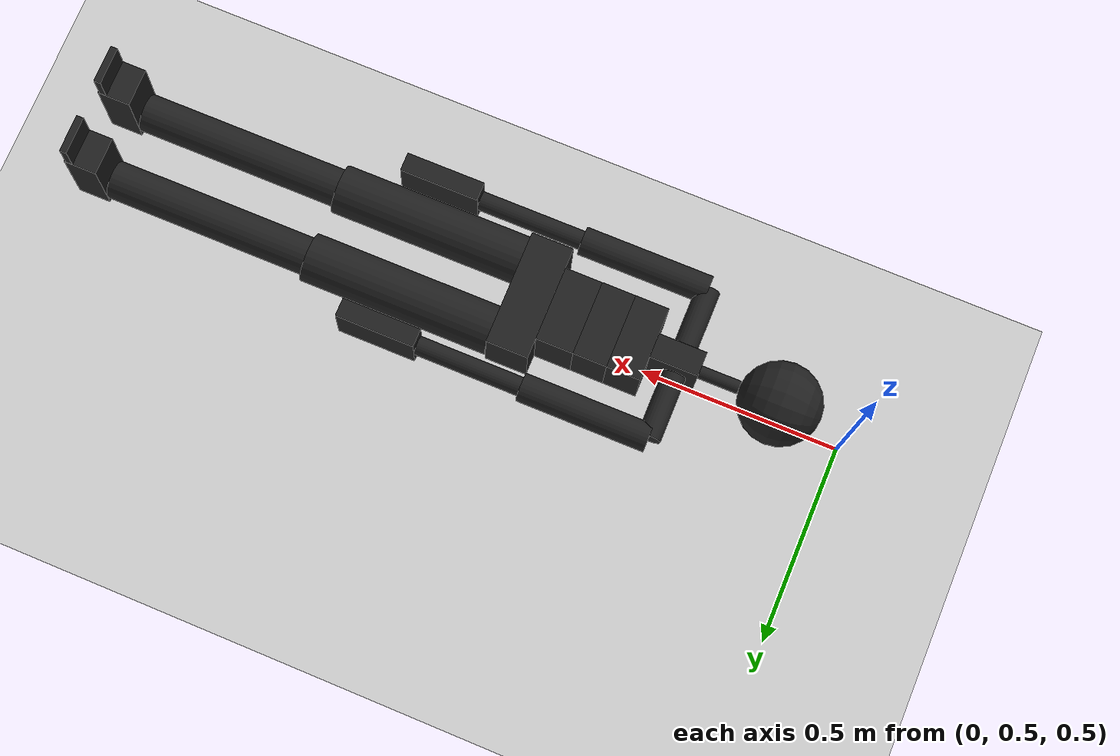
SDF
<sdf version="1.9">
 <world name="empty_world">
  <gravity>0 0 -9.8</gravity>
  <magnetic_field>6e-06 2.3e-05 -4.2e-05</magnetic_field>
  <atmosphere type="adiabatic"/>
  <physics type="ode">
   <max_step_size>0.001</max_step_size>
   <real_time_factor>1</real_time_factor>
   <real_time_update_rate>1000</real_time_update_rate>
  </physics>
  <scene><ambient>0.4 0.4 0.4 1</ambient><background>0.7 0.7 0.7 1</background><shadows>true</shadows></scene>
  <model name="ground_plane">
   <static>true</static>
   <link name="link">
    <collision name="collision">
     <geometry><plane><normal>0 0 1</normal><size>1 1</size></plane></geometry>
    </collision>
    <visual name="visual">
     <geometry><plane><normal>0 0 1</normal><size>100 100</size></plane></geometry>
     <material>
      <ambient>0.8 0.8 0.8 1</ambient>
      <diffuse>0.8 0.8 0.8 1</diffuse>
      <specular>0.8 0.8 0.8 1</specular>
     </material>
    </visual>
    <inertial>
     <mass>1</mass>
     <inertia><ixx>1</ixx><ixy>0</ixy><ixz>0</ixz><iyy>1</iyy><iyz>0</iyz><izz>1</izz></inertia>
    </inertial>
   </link>
   <pose>0.5 0 0 0 -0 0</pose>
  </model>
  <model name="simple_human_model">
   <static>false</static>
   <model name="XSensStyleModel_template">
    <link name="Pelvis">
     <inertial>
      <pose>0 0 0.05412 0 0 0</pose>
      <mass>5.6059799999999997</mass>
      <inertia>
       <ixx>0.044245</ixx>
       <ixy>0</ixy>
       <ixz>0</ixz>
       <iyy>0.017009</iyy>
       <iyz>0</iyz>
       <izz>0.050737999999999998</izz>
      </inertia>
     </inertial>
     <collision name="Pelvis_collision">
      <pose>0 0 0.05412 0 0 0</pose>
      <geometry><box><size>0.1529 0.2785 0.10227</size></box></geometry>
     </collision>
     <visual name="Pelvis_visual">
      <pose>0 0 0.05412 0 0 0</pose>
      <geometry><box><size>0.1529 0.2785 0.10227</size></box></geometry>
      <material><diffuse>0.125 0.125 0.125 1</diffuse><ambient>0.125 0.125 0.125 1</ambient></material>
     </visual>
    </link>
    <joint name="jL5S1_rotx" type="revolute">
     <pose relative_to="Pelvis">-0.0006089999999999999 0 0.10526 0 0 0</pose>
     <parent>Pelvis</parent>
     <child>L5_f1</child>
     <axis>
      <xyz>1 0 0</xyz>
      <limit>
       <lower>-0.61086499999999999</lower>
       <upper>0.61086499999999999</upper>
       <effort>30</effort>
       <velocity>1</velocity>
      </limit>
      <dynamics>
       <damping>0.10000000000000001</damping>
       <friction>0</friction>
       <spring_reference>0</spring_reference>
       <spring_stiffness>0</spring_stiffness>
      </dynamics>
     </axis>
    </joint>
    <link name="L5_f1">
     <pose relative_to="jL5S1_rotx">0 0 0 0 0 0</pose>
     <inertial>
      <mass>0.001</mass>
      <inertia>
       <ixx>9.9999999999999995e-07</ixx>
       <ixy>0</ixy>
       <ixz>0</ixz>
       <iyy>9.9999999999999995e-07</iyy>
       <iyz>0</iyz>
       <izz>9.9999999999999995e-07</izz>
      </inertia>
     </inertial>
    </link>
    <joint name="jL5S1_roty" type="revolute">
     <pose relative_to="L5_f1">0 0 0 0 0 0</pose>
     <parent>L5_f1</parent>
     <child>L5</child>
     <axis>
      <xyz>0 1 0</xyz>
      <limit>
       <lower>-0.52359900000000004</lower>
       <upper>1.3089999999999999</upper>
       <effort>30</effort>
       <velocity>1</velocity>
      </limit>
      <dynamics>
       <damping>0.10000000000000001</damping>
       <friction>0</friction>
       <spring_reference>0</spring_reference>
       <spring_stiffness>0</spring_stiffness>
      </dynamics>
     </axis>
    </joint>
    <link name="L5">
     <pose relative_to="jL5S1_roty">0 0 0 0 0 0</pose>
     <inertial>
      <pose>0 0 0.045123 0 0 0</pose>
      <mass>7.6908000000000003</mass>
      <inertia>
       <ixx>0.026136</ixx>
       <ixy>0</ixy>
       <ixz>0</ixz>
       <iyy>0.020202999999999999</iyy>
       <iyz>0</iyz>
       <izz>0.035900000000000001</izz>
      </inertia>
     </inertial>
     <collision name="L5_collision">
      <pose>0 0 0.045123 0 0 0</pose>
      <geometry><box><size>0.1529 0.18065 0.090247</size></box></geometry>
     </collision>
     <visual name="L5_visual">
      <pose>0 0 0.045123 0 0 0</pose>
      <geometry><box><size>0.1529 0.18065 0.090247</size></box></geometry>
      <material><diffuse>0.125 0.125 0.125 1</diffuse><ambient>0.125 0.125 0.125 1</ambient></material>
     </visual>
    </link>
    <joint name="jL4L3_rotx" type="revolute">
     <pose relative_to="L5">0.001106 0 0.09024699999999999 0 0 0</pose>
     <parent>L5</parent>
     <child>L3_f1</child>
     <axis>
      <xyz>1 0 0</xyz>
      <limit>
       <lower>-0.61086499999999999</lower>
       <upper>0.61086499999999999</upper>
       <effort>30</effort>
       <velocity>1</velocity>
      </limit>
      <dynamics>
       <damping>0.10000000000000001</damping>
       <friction>0</friction>
       <spring_reference>0</spring_reference>
       <spring_stiffness>0</spring_stiffness>
      </dynamics>
     </axis>
    </joint>
    <link name="L3_f1">
     <pose relative_to="jL4L3_rotx">0 0 0 0 0 0</pose>
     <inertial>
      <mass>0.001</mass>
      <inertia>
       <ixx>9.9999999999999995e-07</ixx>
       <ixy>0</ixy>
       <ixz>0</ixz>
       <iyy>9.9999999999999995e-07</iyy>
       <iyz>0</iyz>
       <izz>9.9999999999999995e-07</izz>
      </inertia>
     </inertial>
    </link>
    <joint name="jL4L3_roty" type="revolute">
     <pose relative_to="L3_f1">0 0 0 0 0 0</pose>
     <parent>L3_f1</parent>
     <child>L3</child>
     <axis>
      <xyz>0 1 0</xyz>
      <limit>
       <lower>-0.52359900000000004</lower>
       <upper>1.3089999999999999</upper>
       <effort>30</effort>
       <velocity>1</velocity>
      </limit>
      <dynamics>
       <damping>0.10000000000000001</damping>
       <friction>0</friction>
       <spring_reference>0</spring_reference>
       <spring_stiffness>0</spring_stiffness>
      </dynamics>
     </axis>
    </joint>
    <link name="L3">
     <pose relative_to="jL4L3_roty">0 0 0 0 0 0</pose>
     <inertial>
      <pose>0 0 0.040754 0 0 0</pose>
      <mass>7.6908000000000003</mass>
      <inertia>
       <ixx>0.025173999999999998</ixx>
       <ixy>0</ixy>
       <ixz>0</ixz>
       <iyy>0.019241000000000001</iyy>
       <iyz>0</iyz>
       <izz>0.035900000000000001</izz>
      </inertia>
     </inertial>
     <collision name="L3_collision">
      <pose>0 0 0.040754 0 0 0</pose>
      <geometry><box><size>0.1529 0.18065 0.081508</size></box></geometry>
     </collision>
     <visual name="L3_visual">
      <pose>0 0 0.040754 0 0 0</pose>
      <geometry><box><size>0.1529 0.18065 0.081508</size></box></geometry>
      <material><diffuse>0.125 0.125 0.125 1</diffuse><ambient>0.125 0.125 0.125 1</ambient></material>
     </visual>
    </link>
    <joint name="jL1T12_rotx" type="revolute">
     <pose relative_to="L3">0 0 0.081508 0 0 0</pose>
     <parent>L3</parent>
     <child>T12_f1</child>
     <axis>
      <xyz>1 0 0</xyz>
      <limit>
       <lower>-0.61086499999999999</lower>
       <upper>0.61086499999999999</upper>
       <effort>30</effort>
       <velocity>1</velocity>
      </limit>
      <dynamics>
       <damping>0.10000000000000001</damping>
       <friction>0</friction>
       <spring_reference>0</spring_reference>
       <spring_stiffness>0</spring_stiffness>
      </dynamics>
     </axis>
    </joint>
    <link name="T12_f1">
     <pose relative_to="jL1T12_rotx">0 0 0 0 0 0</pose>
     <inertial>
      <mass>0.001</mass>
      <inertia>
       <ixx>9.9999999999999995e-07</ixx>
       <ixy>0</ixy>
       <ixz>0</ixz>
       <iyy>9.9999999999999995e-07</iyy>
       <iyz>0</iyz>
       <izz>9.9999999999999995e-07</izz>
      </inertia>
     </inertial>
    </link>
    <joint name="jL1T12_roty" type="revolute">
     <pose relative_to="T12_f1">0 0 0 0 0 0</pose>
     <parent>T12_f1</parent>
     <child>T12</child>
     <axis>
      <xyz>0 1 0</xyz>
      <limit>
       <lower>-0.52359900000000004</lower>
       <upper>1.3089999999999999</upper>
       <effort>30</effort>
       <velocity>1</velocity>
      </limit>
      <dynamics>
       <damping>0.10000000000000001</damping>
       <friction>0</friction>
       <spring_reference>0</spring_reference>
       <spring_stiffness>0</spring_stiffness>
      </dynamics>
     </axis>
    </joint>
    <link name="T12">
     <pose relative_to="jL1T12_roty">0 0 0 0 0 0</pose>
     <inertial>
      <pose>0 0 0.040754 0 0 0</pose>
      <mass>7.6908000000000003</mass>
      <inertia>
       <ixx>0.025173999999999998</ixx>
       <ixy>0</ixy>
       <ixz>0</ixz>
       <iyy>0.019241000000000001</iyy>
       <iyz>0</iyz>
       <izz>0.035900000000000001</izz>
      </inertia>
     </inertial>
     <collision name="T12_collision">
      <pose>0 0 0.040754 0 0 0</pose>
      <geometry><box><size>0.1529 0.18065 0.081508</size></box></geometry>
     </collision>
     <visual name="T12_visual">
      <pose>0 0 0.040754 0 0 0</pose>
      <geometry><box><size>0.1529 0.18065 0.081508</size></box></geometry>
      <material><diffuse>0.125 0.125 0.125 1</diffuse><ambient>0.125 0.125 0.125 1</ambient></material>
     </visual>
    </link>
    <joint name="jT9T8_rotx" type="revolute">
     <pose relative_to="T12">0 0 0.081508 0 0 0</pose>
     <parent>T12</parent>
     <child>T8_f1</child>
     <axis>
      <xyz>1 0 0</xyz>
      <limit>
       <lower>-0.34906599999999999</lower>
       <upper>0.34906599999999999</upper>
       <effort>30</effort>
       <velocity>1</velocity>
      </limit>
      <dynamics>
       <damping>0.10000000000000001</damping>
       <friction>0</friction>
       <spring_reference>0</spring_reference>
       <spring_stiffness>0</spring_stiffness>
      </dynamics>
     </axis>
    </joint>
    <link name="T8_f1">
     <pose relative_to="jT9T8_rotx">0 0 0 0 0 0</pose>
     <inertial>
      <mass>0.001</mass>
      <inertia>
       <ixx>9.9999999999999995e-07</ixx>
       <ixy>0</ixy>
       <ixz>0</ixz>
       <iyy>9.9999999999999995e-07</iyy>
       <iyz>0</iyz>
       <izz>9.9999999999999995e-07</izz>
      </inertia>
     </inertial>
    </link>
    <joint name="jT9T8_roty" type="revolute">
     <pose relative_to="T8_f1">0 0 0 0 0 0</pose>
     <parent>T8_f1</parent>
     <child>T8_f2</child>
     <axis>
      <xyz>0 1 0</xyz>
      <limit>
       <lower>-0.261799</lower>
       <upper>0.69813199999999997</upper>
       <effort>30</effort>
       <velocity>1</velocity>
      </limit>
      <dynamics>
       <damping>0.10000000000000001</damping>
       <friction>0</friction>
       <spring_reference>0</spring_reference>
       <spring_stiffness>0</spring_stiffness>
      </dynamics>
     </axis>
    </joint>
    <link name="T8_f2">
     <pose relative_to="jT9T8_roty">0 0 0 0 0 0</pose>
     <inertial>
      <mass>0.001</mass>
      <inertia>
       <ixx>9.9999999999999995e-07</ixx>
       <ixy>0</ixy>
       <ixz>0</ixz>
       <iyy>9.9999999999999995e-07</iyy>
       <iyz>0</iyz>
       <izz>9.9999999999999995e-07</izz>
      </inertia>
     </inertial>
    </link>
    <joint name="jT9T8_rotz" type="revolute">
     <pose relative_to="T8_f2">0 0 0 0 0 0</pose>
     <parent>T8_f2</parent>
     <child>T8</child>
     <axis>
      <xyz>0 0 1</xyz>
      <limit>
       <lower>-0.61086499999999999</lower>
       <upper>0.61086499999999999</upper>
       <effort>30</effort>
       <velocity>1</velocity>
      </limit>
      <dynamics>
       <damping>0.10000000000000001</damping>
       <friction>0</friction>
       <spring_reference>0</spring_reference>
       <spring_stiffness>0</spring_stiffness>
      </dynamics>
     </axis>
    </joint>
    <link name="T8">
     <pose relative_to="jT9T8_rotz">0 0 0 0 0 0</pose>
     <inertial>
      <pose>0 0 0.058159 0 0 0</pose>
      <mass>3.016</mass>
      <inertia>
       <ixx>0.0042886000000000001</ixx>
       <ixy>0</ixy>
       <ixz>0</ixz>
       <iyy>0.0082897000000000005</iyy>
       <iyz>0</iyz>
       <izz>0.0057774000000000002</izz>
      </inertia>
     </inertial>
     <collision name="T8_collision">
      <pose>0 0 0.058159 0 0 0</pose>
      <geometry><box><size>0.13947 0.059444 0.11632</size></box></geometry>
     </collision>
     <visual name="T8_visual">
      <pose>0 0 0.058159 0 0 0</pose>
      <geometry><box><size>0.13947 0.059444 0.11632</size></box></geometry>
      <material><diffuse>0.125 0.125 0.125 1</diffuse><ambient>0.125 0.125 0.125 1</ambient></material>
     </visual>
    </link>
    <joint name="jLeftC7Shoulder_rotx" type="revolute">
     <pose relative_to="T8">0 0.029722 0.065597 0 0 0</pose>
     <parent>T8</parent>
     <child>LeftShoulder</child>
     <axis>
      <xyz>1 0 0</xyz>
      <limit>
       <lower>-0.087266499999999997</lower>
       <upper>0.78539800000000004</upper>
       <effort>30</effort>
       <velocity>1</velocity>
      </limit>
      <dynamics>
       <damping>0.10000000000000001</damping>
       <friction>0</friction>
       <spring_reference>0</spring_reference>
       <spring_stiffness>0</spring_stiffness>
      </dynamics>
     </axis>
    </joint>
    <link name="LeftShoulder">
     <pose relative_to="jLeftC7Shoulder_rotx">0 0 0 0 0 0</pose>
     <inertial>
      <pose>0 0.079794 0 0 0 0</pose>
      <mass>2.3374000000000001</mass>
      <inertia>
       <ixx>0.0054270000000000004</ixx>
       <ixy>0</ixy>
       <ixz>0</ixz>
       <iyy>0.00093232999999999999</iyy>
       <iyz>0</iyz>
       <izz>0.0054270000000000004</izz>
      </inertia>
     </inertial>
     <collision name="LeftShoulder_collision">
      <pose>0 0.079794 0 1.5708 0 0</pose>
      <geometry>
       <cylinder><length>0.15959000000000001</length><radius>0.028243999999999998</radius></cylinder>
      </geometry>
     </collision>
     <visual name="LeftShoulder_visual">
      <pose>0 0.079794 0 1.5708 0 0</pose>
      <geometry>
       <cylinder><length>0.15959000000000001</length><radius>0.028243999999999998</radius></cylinder>
      </geometry>
      <material><diffuse>0.125 0.125 0.125 1</diffuse><ambient>0.125 0.125 0.125 1</ambient></material>
     </visual>
    </link>
    <joint name="jLeftShoulder_rotx" type="revolute">
     <pose relative_to="LeftShoulder">0 0.15959 0 -1.5708 0 0</pose>
     <parent>LeftShoulder</parent>
     <child>LeftUpperArm_f1</child>
     <axis>
      <xyz>1 0 0</xyz>
      <limit>
       <lower>-1.5708</lower>
       <upper>2.3561899999999998</upper>
       <effort>30</effort>
       <velocity>1</velocity>
      </limit>
      <dynamics>
       <damping>0.10000000000000001</damping>
       <friction>0</friction>
       <spring_reference>0</spring_reference>
       <spring_stiffness>0</spring_stiffness>
      </dynamics>
     </axis>
    </joint>
    <link name="LeftUpperArm_f1">
     <pose relative_to="jLeftShoulder_rotx">0 0 0 0 0 0</pose>
     <inertial>
      <mass>0.001</mass>
      <inertia>
       <ixx>9.9999999999999995e-07</ixx>
       <ixy>0</ixy>
       <ixz>0</ixz>
       <iyy>9.9999999999999995e-07</iyy>
       <iyz>0</iyz>
       <izz>9.9999999999999995e-07</izz>
      </inertia>
     </inertial>
    </link>
    <joint name="jLeftShoulder_roty" type="revolute">
     <pose relative_to="LeftUpperArm_f1">0 0 0 0 0 0</pose>
     <parent>LeftUpperArm_f1</parent>
     <child>LeftUpperArm_f2</child>
     <axis>
      <xyz>0 1 0</xyz>
      <limit><lower>-1.5708</lower><upper>1.5708</upper><effort>30</effort><velocity>1</velocity></limit>
      <dynamics>
       <damping>0.10000000000000001</damping>
       <friction>0</friction>
       <spring_reference>0</spring_reference>
       <spring_stiffness>0</spring_stiffness>
      </dynamics>
     </axis>
    </joint>
    <link name="LeftUpperArm_f2">
     <pose relative_to="jLeftShoulder_roty">0 0 0 0 0 0</pose>
     <inertial>
      <mass>0.001</mass>
      <inertia>
       <ixx>9.9999999999999995e-07</ixx>
       <ixy>0</ixy>
       <ixz>0</ixz>
       <iyy>9.9999999999999995e-07</iyy>
       <iyz>0</iyz>
       <izz>9.9999999999999995e-07</izz>
      </inertia>
     </inertial>
    </link>
    <joint name="jLeftShoulder_rotz" type="revolute">
     <pose relative_to="LeftUpperArm_f2">0 0 0 0 0 0</pose>
     <parent>LeftUpperArm_f2</parent>
     <child>LeftUpperArm</child>
     <axis>
      <xyz>0 0 1</xyz>
      <limit>
       <lower>-3.1415899999999999</lower>
       <upper>0.78539800000000004</upper>
       <effort>30</effort>
       <velocity>1</velocity>
      </limit>
      <dynamics>
       <damping>0.10000000000000001</damping>
       <friction>0</friction>
       <spring_reference>0</spring_reference>
       <spring_stiffness>0</spring_stiffness>
      </dynamics>
     </axis>
    </joint>
    <link name="LeftUpperArm">
     <pose relative_to="jLeftShoulder_rotz">0 0 0 0 0 0</pose>
     <inertial>
      <pose>0 0.15626 0 0 0 0</pose>
      <mass>2.262</mass>
      <inertia>
       <ixx>0.019063</ixx>
       <ixy>0</ixy>
       <ixz>0</ixz>
       <iyy>0.0013033000000000001</iyy>
       <iyz>0</iyz>
       <izz>0.019063</izz>
      </inertia>
     </inertial>
     <collision name="LeftUpperArm_collision">
      <pose>0 0.15626 0 1.5708 0 0</pose>
      <geometry>
       <cylinder><length>0.31252999999999997</length><radius>0.033945999999999997</radius></cylinder>
      </geometry>
     </collision>
     <visual name="LeftUpperArm_visual">
      <pose>0 0.15626 0 1.5708 0 0</pose>
      <geometry>
       <cylinder><length>0.31252999999999997</length><radius>0.033945999999999997</radius></cylinder>
      </geometry>
      <material><diffuse>0.125 0.125 0.125 1</diffuse><ambient>0.125 0.125 0.125 1</ambient></material>
     </visual>
    </link>
    <joint name="jLeftElbow_roty" type="revolute">
     <pose relative_to="LeftUpperArm">0 0.31253 0 0 0 0</pose>
     <parent>LeftUpperArm</parent>
     <child>LeftForeArm_f1</child>
     <axis>
      <xyz>0 1 0</xyz>
      <limit><lower>-1.5708</lower><upper>1.48353</upper><effort>30</effort><velocity>1</velocity></limit>
      <dynamics>
       <damping>0.10000000000000001</damping>
       <friction>0</friction>
       <spring_reference>0</spring_reference>
       <spring_stiffness>0</spring_stiffness>
      </dynamics>
     </axis>
    </joint>
    <link name="LeftForeArm_f1">
     <pose relative_to="jLeftElbow_roty">0 0 0 0 0 0</pose>
     <inertial>
      <mass>0.001</mass>
      <inertia>
       <ixx>9.9999999999999995e-07</ixx>
       <ixy>0</ixy>
       <ixz>0</ixz>
       <iyy>9.9999999999999995e-07</iyy>
       <iyz>0</iyz>
       <izz>9.9999999999999995e-07</izz>
      </inertia>
     </inertial>
    </link>
    <joint name="jLeftElbow_rotz" type="revolute">
     <pose relative_to="LeftForeArm_f1">0 0 0 0 0 0</pose>
     <parent>LeftForeArm_f1</parent>
     <child>LeftForeArm</child>
     <axis>
      <xyz>0 0 1</xyz>
      <limit><lower>-2.5307300000000001</lower><upper>0</upper><effort>30</effort><velocity>1</velocity></limit>
      <dynamics>
       <damping>0.10000000000000001</damping>
       <friction>0</friction>
       <spring_reference>0</spring_reference>
       <spring_stiffness>0</spring_stiffness>
      </dynamics>
     </axis>
    </joint>
    <link name="LeftForeArm">
     <pose relative_to="jLeftElbow_rotz">0 0 0 0 0 0</pose>
     <inertial>
      <pose>0 0.12824 0 0 0 0</pose>
      <mass>1.508</mass>
      <inertia>
       <ixx>0.0084595</ixx>
       <ixy>0</ixy>
       <ixz>0</ixz>
       <iyy>0.00038615999999999998</iyy>
       <iyz>0</iyz>
       <izz>0.0084595</izz>
      </inertia>
     </inertial>
     <collision name="LeftForeArm_collision">
      <pose>0 0.12824 0 1.5708 0 0</pose>
      <geometry>
       <cylinder><length>0.25647999999999999</length><radius>0.022630999999999998</radius></cylinder>
      </geometry>
     </collision>
     <visual name="LeftForeArm_visual">
      <pose>0 0.12824 0 1.5708 0 0</pose>
      <geometry>
       <cylinder><length>0.25647999999999999</length><radius>0.022630999999999998</radius></cylinder>
      </geometry>
      <material><diffuse>0.125 0.125 0.125 1</diffuse><ambient>0.125 0.125 0.125 1</ambient></material>
     </visual>
    </link>
    <joint name="jLeftWrist_rotx" type="revolute">
     <pose relative_to="LeftForeArm">3.3e-05 0.25648 0 0 0 0</pose>
     <parent>LeftForeArm</parent>
     <child>LeftHand_f1</child>
     <axis>
      <xyz>1 0 0</xyz>
      <limit>
       <lower>-1.0471999999999999</lower>
       <upper>0.87266500000000002</upper>
       <effort>30</effort>
       <velocity>1</velocity>
      </limit>
      <dynamics>
       <damping>0.10000000000000001</damping>
       <friction>0</friction>
       <spring_reference>0</spring_reference>
       <spring_stiffness>0</spring_stiffness>
      </dynamics>
     </axis>
    </joint>
    <link name="LeftHand_f1">
     <pose relative_to="jLeftWrist_rotx">0 0 0 0 0 0</pose>
     <inertial>
      <mass>0.001</mass>
      <inertia>
       <ixx>9.9999999999999995e-07</ixx>
       <ixy>0</ixy>
       <ixz>0</ixz>
       <iyy>9.9999999999999995e-07</iyy>
       <iyz>0</iyz>
       <izz>9.9999999999999995e-07</izz>
      </inertia>
     </inertial>
    </link>
    <joint name="jLeftWrist_rotz" type="revolute">
     <pose relative_to="LeftHand_f1">0 0 0 0 0 0</pose>
     <parent>LeftHand_f1</parent>
     <child>LeftHand</child>
     <axis>
      <xyz>0 0 1</xyz>
      <limit>
       <lower>-0.34906599999999999</lower>
       <upper>0.52359900000000004</upper>
       <effort>30</effort>
       <velocity>1</velocity>
      </limit>
      <dynamics>
       <damping>0.10000000000000001</damping>
       <friction>0</friction>
       <spring_reference>0</spring_reference>
       <spring_stiffness>0</spring_stiffness>
      </dynamics>
     </axis>
    </joint>
    <link name="LeftHand">
     <pose relative_to="jLeftWrist_rotz">0 0 0 0 0 0</pose>
     <inertial>
      <pose>0 0.096206 0 0 0 0</pose>
      <mass>0.45240999999999998</mass>
      <inertia>
       <ixx>0.001474</ixx>
       <ixy>0</ixy>
       <ixz>0</ixz>
       <iyy>0.00069855999999999998</iyy>
       <iyz>0</iyz>
       <izz>0.0020171</izz>
      </inertia>
     </inertial>
     <collision name="LeftHand_collision">
      <pose>0 0.096206 0 0 0 0</pose>
      <geometry><box><size>0.12827 0.19241 0.045261</size></box></geometry>
     </collision>
     <visual name="LeftHand_visual">
      <pose>0 0.096206 0 0 0 0</pose>
      <geometry><box><size>0.12827 0.19241 0.045261</size></box></geometry>
      <material><diffuse>0.125 0.125 0.125 1</diffuse><ambient>0.125 0.125 0.125 1</ambient></material>
     </visual>
     <visual name="LeftHandCOM_visual_1">
      <pose>0 0.096206 0 0 0 0</pose>
      <geometry><box><size>0 0 0</size></box></geometry>
      <material><diffuse>0.125 0.125 0.125 1</diffuse><ambient>0.125 0.125 0.125 1</ambient></material>
     </visual>
    </link>
    <joint name="jRightC7Shoulder_rotx" type="revolute">
     <pose relative_to="T8">0 -0.029722 0.065597 0 0 0</pose>
     <parent>T8</parent>
     <child>RightShoulder</child>
     <axis>
      <xyz>1 0 0</xyz>
      <limit>
       <lower>-0.78539800000000004</lower>
       <upper>0.087266499999999997</upper>
       <effort>30</effort>
       <velocity>1</velocity>
      </limit>
      <dynamics>
       <damping>0.10000000000000001</damping>
       <friction>0</friction>
       <spring_reference>0</spring_reference>
       <spring_stiffness>0</spring_stiffness>
      </dynamics>
     </axis>
    </joint>
    <link name="RightShoulder">
     <pose relative_to="jRightC7Shoulder_rotx">0 0 0 0 0 0</pose>
     <inertial>
      <pose>0 -0.079794 0 0 0 0</pose>
      <mass>2.3374000000000001</mass>
      <inertia>
       <ixx>0.0054270000000000004</ixx>
       <ixy>0</ixy>
       <ixz>0</ixz>
       <iyy>0.00093232999999999999</iyy>
       <iyz>0</iyz>
       <izz>0.0054270000000000004</izz>
      </inertia>
     </inertial>
     <collision name="RightShoulder_collision">
      <pose>0 -0.079794 0 1.5708 0 0</pose>
      <geometry>
       <cylinder><length>0.15959000000000001</length><radius>0.028243999999999998</radius></cylinder>
      </geometry>
     </collision>
     <visual name="RightShoulder_visual">
      <pose>0 -0.079794 0 1.5708 0 0</pose>
      <geometry>
       <cylinder><length>0.15959000000000001</length><radius>0.028243999999999998</radius></cylinder>
      </geometry>
      <material><diffuse>0.125 0.125 0.125 1</diffuse><ambient>0.125 0.125 0.125 1</ambient></material>
     </visual>
    </link>
    <joint name="jRightShoulder_rotx" type="revolute">
     <pose relative_to="RightShoulder">0 -0.15959 0 1.5708 0 0</pose>
     <parent>RightShoulder</parent>
     <child>RightUpperArm_f1</child>
     <axis>
      <xyz>1 0 0</xyz>
      <limit>
       <lower>-2.3561899999999998</lower>
       <upper>1.5708</upper>
       <effort>30</effort>
       <velocity>1</velocity>
      </limit>
      <dynamics>
       <damping>0.10000000000000001</damping>
       <friction>0</friction>
       <spring_reference>0</spring_reference>
       <spring_stiffness>0</spring_stiffness>
      </dynamics>
     </axis>
    </joint>
    <link name="RightUpperArm_f1">
     <pose relative_to="jRightShoulder_rotx">0 0 0 0 0 0</pose>
     <inertial>
      <mass>0.001</mass>
      <inertia>
       <ixx>9.9999999999999995e-07</ixx>
       <ixy>0</ixy>
       <ixz>0</ixz>
       <iyy>9.9999999999999995e-07</iyy>
       <iyz>0</iyz>
       <izz>9.9999999999999995e-07</izz>
      </inertia>
     </inertial>
    </link>
    <joint name="jRightShoulder_roty" type="revolute">
     <pose relative_to="RightUpperArm_f1">0 0 0 0 0 0</pose>
     <parent>RightUpperArm_f1</parent>
     <child>RightUpperArm_f2</child>
     <axis>
      <xyz>0 1 0</xyz>
      <limit><lower>-1.5708</lower><upper>1.5708</upper><effort>30</effort><velocity>1</velocity></limit>
      <dynamics>
       <damping>0.10000000000000001</damping>
       <friction>0</friction>
       <spring_reference>0</spring_reference>
       <spring_stiffness>0</spring_stiffness>
      </dynamics>
     </axis>
    </joint>
    <link name="RightUpperArm_f2">
     <pose relative_to="jRightShoulder_roty">0 0 0 0 0 0</pose>
     <inertial>
      <mass>0.001</mass>
      <inertia>
       <ixx>9.9999999999999995e-07</ixx>
       <ixy>0</ixy>
       <ixz>0</ixz>
       <iyy>9.9999999999999995e-07</iyy>
       <iyz>0</iyz>
       <izz>9.9999999999999995e-07</izz>
      </inertia>
     </inertial>
    </link>
    <joint name="jRightShoulder_rotz" type="revolute">
     <pose relative_to="RightUpperArm_f2">0 0 0 0 0 0</pose>
     <parent>RightUpperArm_f2</parent>
     <child>RightUpperArm</child>
     <axis>
      <xyz>0 0 1</xyz>
      <limit>
       <lower>-0.78539800000000004</lower>
       <upper>3.1415899999999999</upper>
       <effort>30</effort>
       <velocity>1</velocity>
      </limit>
      <dynamics>
       <damping>0.10000000000000001</damping>
       <friction>0</friction>
       <spring_reference>0</spring_reference>
       <spring_stiffness>0</spring_stiffness>
      </dynamics>
     </axis>
    </joint>
    <link name="RightUpperArm">
     <pose relative_to="jRightShoulder_rotz">0 0 0 0 0 0</pose>
     <inertial>
      <pose>0 -0.15626 0 0 0 0</pose>
      <mass>2.262</mass>
      <inertia>
       <ixx>0.019063</ixx>
       <ixy>0</ixy>
       <ixz>0</ixz>
       <iyy>0.0013033000000000001</iyy>
       <iyz>0</iyz>
       <izz>0.019063</izz>
      </inertia>
     </inertial>
     <collision name="RightUpperArm_collision">
      <pose>0 -0.15626 0 1.5708 0 0</pose>
      <geometry>
       <cylinder><length>0.31252999999999997</length><radius>0.033945999999999997</radius></cylinder>
      </geometry>
     </collision>
     <visual name="RightUpperArm_visual">
      <pose>0 -0.15626 0 1.5708 0 0</pose>
      <geometry>
       <cylinder><length>0.31252999999999997</length><radius>0.033945999999999997</radius></cylinder>
      </geometry>
      <material><diffuse>0.125 0.125 0.125 1</diffuse><ambient>0.125 0.125 0.125 1</ambient></material>
     </visual>
    </link>
    <joint name="jRightElbow_roty" type="revolute">
     <pose relative_to="RightUpperArm">0 -0.31253 0 0 0 0</pose>
     <parent>RightUpperArm</parent>
     <child>RightForeArm_f1</child>
     <axis>
      <xyz>0 1 0</xyz>
      <limit><lower>-1.5708</lower><upper>1.48353</upper><effort>30</effort><velocity>1</velocity></limit>
      <dynamics>
       <damping>0.10000000000000001</damping>
       <friction>0</friction>
       <spring_reference>0</spring_reference>
       <spring_stiffness>0</spring_stiffness>
      </dynamics>
     </axis>
    </joint>
    <link name="RightForeArm_f1">
     <pose relative_to="jRightElbow_roty">0 0 0 0 0 0</pose>
     <inertial>
      <mass>0.001</mass>
      <inertia>
       <ixx>9.9999999999999995e-07</ixx>
       <ixy>0</ixy>
       <ixz>0</ixz>
       <iyy>9.9999999999999995e-07</iyy>
       <iyz>0</iyz>
       <izz>9.9999999999999995e-07</izz>
      </inertia>
     </inertial>
    </link>
    <joint name="jRightElbow_rotz" type="revolute">
     <pose relative_to="RightForeArm_f1">0 0 0 0 0 0</pose>
     <parent>RightForeArm_f1</parent>
     <child>RightForeArm</child>
     <axis>
      <xyz>0 0 1</xyz>
      <limit><lower>0</lower><upper>2.5307300000000001</upper><effort>30</effort><velocity>1</velocity></limit>
      <dynamics>
       <damping>0.10000000000000001</damping>
       <friction>0</friction>
       <spring_reference>0</spring_reference>
       <spring_stiffness>0</spring_stiffness>
      </dynamics>
     </axis>
    </joint>
    <link name="RightForeArm">
     <pose relative_to="jRightElbow_rotz">0 0 0 0 0 0</pose>
     <inertial>
      <pose>0 -0.12824 0 0 0 0</pose>
      <mass>1.508</mass>
      <inertia>
       <ixx>0.0084595</ixx>
       <ixy>0</ixy>
       <ixz>0</ixz>
       <iyy>0.00038615999999999998</iyy>
       <iyz>0</iyz>
       <izz>0.0084595</izz>
      </inertia>
     </inertial>
     <collision name="RightForeArm_collision">
      <pose>0 -0.12824 0 1.5708 0 0</pose>
      <geometry>
       <cylinder><length>0.25647999999999999</length><radius>0.022630999999999998</radius></cylinder>
      </geometry>
     </collision>
     <visual name="RightForeArm_visual">
      <pose>0 -0.12824 0 1.5708 0 0</pose>
      <geometry>
       <cylinder><length>0.25647999999999999</length><radius>0.022630999999999998</radius></cylinder>
      </geometry>
      <material><diffuse>0.125 0.125 0.125 1</diffuse><ambient>0.125 0.125 0.125 1</ambient></material>
     </visual>
    </link>
    <joint name="jRightWrist_rotx" type="revolute">
     <pose relative_to="RightForeArm">3.3e-05 -0.25648 0 0 0 0</pose>
     <parent>RightForeArm</parent>
     <child>RightHand_f1</child>
     <axis>
      <xyz>1 0 0</xyz>
      <limit>
       <lower>-0.87266500000000002</lower>
       <upper>1.0471999999999999</upper>
       <effort>30</effort>
       <velocity>1</velocity>
      </limit>
      <dynamics>
       <damping>0.10000000000000001</damping>
       <friction>0</friction>
       <spring_reference>0</spring_reference>
       <spring_stiffness>0</spring_stiffness>
      </dynamics>
     </axis>
    </joint>
    <link name="RightHand_f1">
     <pose relative_to="jRightWrist_rotx">0 0 0 0 0 0</pose>
     <inertial>
      <mass>0.001</mass>
      <inertia>
       <ixx>9.9999999999999995e-07</ixx>
       <ixy>0</ixy>
       <ixz>0</ixz>
       <iyy>9.9999999999999995e-07</iyy>
       <iyz>0</iyz>
       <izz>9.9999999999999995e-07</izz>
      </inertia>
     </inertial>
    </link>
    <joint name="jRightWrist_rotz" type="revolute">
     <pose relative_to="RightHand_f1">0 0 0 0 0 0</pose>
     <parent>RightHand_f1</parent>
     <child>RightHand</child>
     <axis>
      <xyz>0 0 1</xyz>
      <limit>
       <lower>-0.52359900000000004</lower>
       <upper>0.34906599999999999</upper>
       <effort>30</effort>
       <velocity>1</velocity>
      </limit>
      <dynamics>
       <damping>0.10000000000000001</damping>
       <friction>0</friction>
       <spring_reference>0</spring_reference>
       <spring_stiffness>0</spring_stiffness>
      </dynamics>
     </axis>
    </joint>
    <link name="RightHand">
     <pose relative_to="jRightWrist_rotz">0 0 0 0 0 0</pose>
     <inertial>
      <pose>0 -0.096206 0 0 0 0</pose>
      <mass>0.45240999999999998</mass>
      <inertia>
       <ixx>0.001474</ixx>
       <ixy>0</ixy>
       <ixz>0</ixz>
       <iyy>0.00069855999999999998</iyy>
       <iyz>0</iyz>
       <izz>0.0020171</izz>
      </inertia>
     </inertial>
     <collision name="RightHand_collision">
      <pose>0 -0.096206 0 0 0 0</pose>
      <geometry><box><size>0.12827 0.19241 0.045261</size></box></geometry>
     </collision>
     <visual name="RightHand_visual">
      <pose>0 -0.096206 0 0 0 0</pose>
      <geometry><box><size>0.12827 0.19241 0.045261</size></box></geometry>
      <material><diffuse>0.125 0.125 0.125 1</diffuse><ambient>0.125 0.125 0.125 1</ambient></material>
     </visual>
     <visual name="RightHandCOM_visual_1">
      <pose>0 -0.096206 0 0 0 0</pose>
      <geometry><box><size>0 0 0</size></box></geometry>
      <material><diffuse>0.125 0.125 0.125 1</diffuse><ambient>0.125 0.125 0.125 1</ambient></material>
     </visual>
    </link>
    <joint name="jT1C7_rotx" type="revolute">
     <pose relative_to="T8">0 0 0.11632 0 0 0</pose>
     <parent>T8</parent>
     <child>Neck_f1</child>
     <axis>
      <xyz>1 0 0</xyz>
      <limit>
       <lower>-0.61086499999999999</lower>
       <upper>0.61086499999999999</upper>
       <effort>30</effort>
       <velocity>1</velocity>
      </limit>
      <dynamics>
       <damping>0.10000000000000001</damping>
       <friction>0</friction>
       <spring_reference>0</spring_reference>
       <spring_stiffness>0</spring_stiffness>
      </dynamics>
     </axis>
    </joint>
    <link name="Neck_f1">
     <pose relative_to="jT1C7_rotx">0 0 0 0 0 0</pose>
     <inertial>
      <mass>0.001</mass>
      <inertia>
       <ixx>9.9999999999999995e-07</ixx>
       <ixy>0</ixy>
       <ixz>0</ixz>
       <iyy>9.9999999999999995e-07</iyy>
       <iyz>0</iyz>
       <izz>9.9999999999999995e-07</izz>
      </inertia>
     </inertial>
    </link>
    <joint name="jT1C7_roty" type="revolute">
     <pose relative_to="Neck_f1">0 0 0 0 0 0</pose>
     <parent>Neck_f1</parent>
     <child>Neck_f2</child>
     <axis>
      <xyz>0 1 0</xyz>
      <limit>
       <lower>-0.95993099999999998</lower>
       <upper>1.5708</upper>
       <effort>30</effort>
       <velocity>1</velocity>
      </limit>
      <dynamics>
       <damping>0.10000000000000001</damping>
       <friction>0</friction>
       <spring_reference>0</spring_reference>
       <spring_stiffness>0</spring_stiffness>
      </dynamics>
     </axis>
    </joint>
    <link name="Neck_f2">
     <pose relative_to="jT1C7_roty">0 0 0 0 0 0</pose>
     <inertial>
      <mass>0.001</mass>
      <inertia>
       <ixx>9.9999999999999995e-07</ixx>
       <ixy>0</ixy>
       <ixz>0</ixz>
       <iyy>9.9999999999999995e-07</iyy>
       <iyz>0</iyz>
       <izz>9.9999999999999995e-07</izz>
      </inertia>
     </inertial>
    </link>
    <joint name="jT1C7_rotz" type="revolute">
     <pose relative_to="Neck_f2">0 0 0 0 0 0</pose>
     <parent>Neck_f2</parent>
     <child>Neck</child>
     <axis>
      <xyz>0 0 1</xyz>
      <limit><lower>-1.22173</lower><upper>1.22173</upper><effort>30</effort><velocity>1</velocity></limit>
      <dynamics>
       <damping>0.10000000000000001</damping>
       <friction>0</friction>
       <spring_reference>0</spring_reference>
       <spring_stiffness>0</spring_stiffness>
      </dynamics>
     </axis>
    </joint>
    <link name="Neck">
     <pose relative_to="jT1C7_rotz">0 0 0 0 0 0</pose>
     <inertial>
      <pose>0 0 0.048265 0 0 0</pose>
      <mass>0.90480000000000005</mass>
      <inertia>
       <ixx>0.00092111000000000005</ixx>
       <ixy>0</ixy>
       <ixz>0</ixz>
       <iyy>0.00092111000000000005</iyy>
       <iyz>0</iyz>
       <izz>0.00043709</izz>
      </inertia>
     </inertial>
     <collision name="Neck_collision">
      <pose>0 0 0.048265 0 0 0</pose>
      <geometry>
       <cylinder><length>0.096529000000000004</length><radius>0.015540999999999999</radius></cylinder>
      </geometry>
     </collision>
     <visual name="Neck_visual">
      <pose>0 0 0.048265 0 0 0</pose>
      <geometry>
       <cylinder><length>0.096529000000000004</length><radius>0.015540999999999999</radius></cylinder>
      </geometry>
      <material><diffuse>0.125 0.125 0.125 1</diffuse><ambient>0.125 0.125 0.125 1</ambient></material>
     </visual>
    </link>
    <joint name="jC1Head_rotx" type="revolute">
     <pose relative_to="Neck">0.0009970000000000001 0 0.096529 0 0 0</pose>
     <parent>Neck</parent>
     <child>Head_f1</child>
     <axis>
      <xyz>1 0 0</xyz>
      <limit>
       <lower>-0.61086499999999999</lower>
       <upper>0.61086499999999999</upper>
       <effort>30</effort>
       <velocity>1</velocity>
      </limit>
      <dynamics>
       <damping>0.10000000000000001</damping>
       <friction>0</friction>
       <spring_reference>0</spring_reference>
       <spring_stiffness>0</spring_stiffness>
      </dynamics>
     </axis>
    </joint>
    <link name="Head_f1">
     <pose relative_to="jC1Head_rotx">0 0 0 0 0 0</pose>
     <inertial>
      <mass>0.001</mass>
      <inertia>
       <ixx>9.9999999999999995e-07</ixx>
       <ixy>0</ixy>
       <ixz>0</ixz>
       <iyy>9.9999999999999995e-07</iyy>
       <iyz>0</iyz>
       <izz>9.9999999999999995e-07</izz>
      </inertia>
     </inertial>
    </link>
    <joint name="jC1Head_roty" type="revolute">
     <pose relative_to="Head_f1">0 0 0 0 0 0</pose>
     <parent>Head_f1</parent>
     <child>Head</child>
     <axis>
      <xyz>0 1 0</xyz>
      <limit>
       <lower>-0.436332</lower>
       <upper>0.17453299999999999</upper>
       <effort>30</effort>
       <velocity>1</velocity>
      </limit>
      <dynamics>
       <damping>0.10000000000000001</damping>
       <friction>0</friction>
       <spring_reference>0</spring_reference>
       <spring_stiffness>0</spring_stiffness>
      </dynamics>
     </axis>
    </joint>
    <link name="Head">
     <pose relative_to="jC1Head_roty">0 0 0 0 0 0</pose>
     <inertial>
      <pose>0 0 0.09927800000000001 0 0 0</pose>
      <mass>2.7143999999999999</mass>
      <inertia>
       <ixx>0.010701</ixx>
       <ixy>0</ixy>
       <ixz>0</ixz>
       <iyy>0.010701</iyy>
       <iyz>0</iyz>
       <izz>0.010701</izz>
      </inertia>
     </inertial>
     <collision name="Head_collision">
      <pose>0 0 0.09927800000000001 0 0 0</pose>
      <geometry><sphere><radius>0.099278000000000005</radius></sphere></geometry>
     </collision>
     <visual name="Head_visual">
      <pose>0 0 0.09927800000000001 0 0 0</pose>
      <geometry><sphere><radius>0.099278000000000005</radius></sphere></geometry>
      <material><diffuse>0.125 0.125 0.125 1</diffuse><ambient>0.125 0.125 0.125 1</ambient></material>
     </visual>
    </link>
    <joint name="jLeftHip_rotx" type="revolute">
     <pose relative_to="Pelvis">0.000305 0.090327 0.002984 0 0 0</pose>
     <parent>Pelvis</parent>
     <child>LeftUpperLeg_f1</child>
     <axis>
      <xyz>1 0 0</xyz>
      <limit>
       <lower>-0.52359900000000004</lower>
       <upper>0.78539800000000004</upper>
       <effort>30</effort>
       <velocity>1</velocity>
      </limit>
      <dynamics>
       <damping>0.10000000000000001</damping>
       <friction>0</friction>
       <spring_reference>0</spring_reference>
       <spring_stiffness>0</spring_stiffness>
      </dynamics>
     </axis>
    </joint>
    <link name="LeftUpperLeg_f1">
     <pose relative_to="jLeftHip_rotx">0 0 0 0 0 0</pose>
     <inertial>
      <mass>0.001</mass>
      <inertia>
       <ixx>9.9999999999999995e-07</ixx>
       <ixy>0</ixy>
       <ixz>0</ixz>
       <iyy>9.9999999999999995e-07</iyy>
       <iyz>0</iyz>
       <izz>9.9999999999999995e-07</izz>
      </inertia>
     </inertial>
    </link>
    <joint name="jLeftHip_roty" type="revolute">
     <pose relative_to="LeftUpperLeg_f1">0 0 0 0 0 0</pose>
     <parent>LeftUpperLeg_f1</parent>
     <child>LeftUpperLeg_f2</child>
     <axis>
      <xyz>0 1 0</xyz>
      <limit>
       <lower>-2.0943999999999998</lower>
       <upper>0.261799</upper>
       <effort>30</effort>
       <velocity>1</velocity>
      </limit>
      <dynamics>
       <damping>0.10000000000000001</damping>
       <friction>0</friction>
       <spring_reference>0</spring_reference>
       <spring_stiffness>0</spring_stiffness>
      </dynamics>
     </axis>
    </joint>
    <link name="LeftUpperLeg_f2">
     <pose relative_to="jLeftHip_roty">0 0 0 0 0 0</pose>
     <inertial>
      <mass>0.001</mass>
      <inertia>
       <ixx>9.9999999999999995e-07</ixx>
       <ixy>0</ixy>
       <ixz>0</ixz>
       <iyy>9.9999999999999995e-07</iyy>
       <iyz>0</iyz>
       <izz>9.9999999999999995e-07</izz>
      </inertia>
     </inertial>
    </link>
    <joint name="jLeftHip_rotz" type="revolute">
     <pose relative_to="LeftUpperLeg_f2">0 0 0 0 0 0</pose>
     <parent>LeftUpperLeg_f2</parent>
     <child>LeftUpperLeg</child>
     <axis>
      <xyz>0 0 1</xyz>
      <limit>
       <lower>-0.78539800000000004</lower>
       <upper>0.78539800000000004</upper>
       <effort>30</effort>
       <velocity>1</velocity>
      </limit>
      <dynamics>
       <damping>0.10000000000000001</damping>
       <friction>0</friction>
       <spring_reference>0</spring_reference>
       <spring_stiffness>0</spring_stiffness>
      </dynamics>
     </axis>
    </joint>
    <link name="LeftUpperLeg">
     <pose relative_to="jLeftHip_rotz">0 0 0 0 0 0</pose>
     <inertial>
      <pose>0 0 -0.23081 0 0 0</pose>
      <mass>9.4250000000000007</mass>
      <inertia>
       <ixx>0.17541000000000001</ixx>
       <ixy>0</ixy>
       <ixz>0</ixz>
       <iyy>0.17541000000000001</iyy>
       <iyz>0</iyz>
       <izz>0.016095000000000002</izz>
      </inertia>
     </inertial>
     <collision name="LeftUpperLeg_collision">
      <pose>0 0 -0.23081 0 0 0</pose>
      <geometry><cylinder><length>0.46161999999999997</length><radius>0.058441</radius></cylinder></geometry>
     </collision>
     <visual name="LeftUpperLeg_visual">
      <pose>0 0 -0.23081 0 0 0</pose>
      <geometry><cylinder><length>0.46161999999999997</length><radius>0.058441</radius></cylinder></geometry>
      <material><diffuse>0.125 0.125 0.125 1</diffuse><ambient>0.125 0.125 0.125 1</ambient></material>
     </visual>
    </link>
    <joint name="jLeftKnee_roty" type="revolute">
     <pose relative_to="LeftUpperLeg">-9.6e-05 0 -0.46162 0 0 0</pose>
     <parent>LeftUpperLeg</parent>
     <child>LeftLowerLeg_f1</child>
     <axis>
      <xyz>0 1 0</xyz>
      <limit><lower>0</lower><upper>2.3561899999999998</upper><effort>30</effort><velocity>1</velocity></limit>
      <dynamics>
       <damping>0.10000000000000001</damping>
       <friction>0</friction>
       <spring_reference>0</spring_reference>
       <spring_stiffness>0</spring_stiffness>
      </dynamics>
     </axis>
    </joint>
    <link name="LeftLowerLeg_f1">
     <pose relative_to="jLeftKnee_roty">0 0 0 0 0 0</pose>
     <inertial>
      <mass>0.001</mass>
      <inertia>
       <ixx>9.9999999999999995e-07</ixx>
       <ixy>0</ixy>
       <ixz>0</ixz>
       <iyy>9.9999999999999995e-07</iyy>
       <iyz>0</iyz>
       <izz>9.9999999999999995e-07</izz>
      </inertia>
     </inertial>
    </link>
    <joint name="jLeftKnee_rotz" type="revolute">
     <pose relative_to="LeftLowerLeg_f1">0 0 0 0 0 0</pose>
     <parent>LeftLowerLeg_f1</parent>
     <child>LeftLowerLeg</child>
     <axis>
      <xyz>0 0 1</xyz>
      <limit>
       <lower>-0.52359900000000004</lower>
       <upper>0.69813199999999997</upper>
       <effort>30</effort>
       <velocity>1</velocity>
      </limit>
      <dynamics>
       <damping>0.10000000000000001</damping>
       <friction>0</friction>
       <spring_reference>0</spring_reference>
       <spring_stiffness>0</spring_stiffness>
      </dynamics>
     </axis>
    </joint>
    <link name="LeftLowerLeg">
     <pose relative_to="jLeftKnee_rotz">0 0 0 0 0 0</pose>
     <inertial>
      <pose>0 0 -0.24913 0 0 0</pose>
      <mass>2.7521</mass>
      <inertia>
       <ixx>0.058368000000000003</ixx>
       <ixy>0</ixy>
       <ixz>0</ixz>
       <iyy>0.058368000000000003</iyy>
       <iyz>0</iyz>
       <izz>0.0028617999999999998</izz>
      </inertia>
     </inertial>
     <collision name="LeftLowerLeg_collision">
      <pose>0 0 -0.24913 0 0 0</pose>
      <geometry>
       <cylinder><length>0.49825999999999998</length><radius>0.045603999999999999</radius></cylinder>
      </geometry>
     </collision>
     <visual name="LeftLowerLeg_visual">
      <pose>0 0 -0.24913 0 0 0</pose>
      <geometry>
       <cylinder><length>0.49825999999999998</length><radius>0.045603999999999999</radius></cylinder>
      </geometry>
      <material><diffuse>0.125 0.125 0.125 1</diffuse><ambient>0.125 0.125 0.125 1</ambient></material>
     </visual>
    </link>
    <joint name="jLeftAnkle_rotx" type="revolute">
     <pose relative_to="LeftLowerLeg">-0.000118 0 -0.49826 0 0 0</pose>
     <parent>LeftLowerLeg</parent>
     <child>LeftFoot_f1</child>
     <axis>
      <xyz>1 0 0</xyz>
      <limit>
       <lower>-0.78539800000000004</lower>
       <upper>0.61086499999999999</upper>
       <effort>30</effort>
       <velocity>1</velocity>
      </limit>
      <dynamics>
       <damping>0.10000000000000001</damping>
       <friction>0</friction>
       <spring_reference>0</spring_reference>
       <spring_stiffness>0</spring_stiffness>
      </dynamics>
     </axis>
    </joint>
    <link name="LeftFoot_f1">
     <pose relative_to="jLeftAnkle_rotx">0 0 0 0 0 0</pose>
     <inertial>
      <mass>0.001</mass>
      <inertia>
       <ixx>9.9999999999999995e-07</ixx>
       <ixy>0</ixy>
       <ixz>0</ixz>
       <iyy>9.9999999999999995e-07</iyy>
       <iyz>0</iyz>
       <izz>9.9999999999999995e-07</izz>
      </inertia>
     </inertial>
    </link>
    <joint name="jLeftAnkle_roty" type="revolute">
     <pose relative_to="LeftFoot_f1">0 0 0 0 0 0</pose>
     <parent>LeftFoot_f1</parent>
     <child>LeftFoot_f2</child>
     <axis>
      <xyz>0 1 0</xyz>
      <limit>
       <lower>-0.52359900000000004</lower>
       <upper>0.87266500000000002</upper>
       <effort>30</effort>
       <velocity>1</velocity>
      </limit>
      <dynamics>
       <damping>0.10000000000000001</damping>
       <friction>0</friction>
       <spring_reference>0</spring_reference>
       <spring_stiffness>0</spring_stiffness>
      </dynamics>
     </axis>
    </joint>
    <link name="LeftFoot_f2">
     <pose relative_to="jLeftAnkle_roty">0 0 0 0 0 0</pose>
     <inertial>
      <mass>0.001</mass>
      <inertia>
       <ixx>9.9999999999999995e-07</ixx>
       <ixy>0</ixy>
       <ixz>0</ixz>
       <iyy>9.9999999999999995e-07</iyy>
       <iyz>0</iyz>
       <izz>9.9999999999999995e-07</izz>
      </inertia>
     </inertial>
    </link>
    <joint name="jLeftAnkle_rotz" type="revolute">
     <pose relative_to="LeftFoot_f2">0 0 0 0 0 0</pose>
     <parent>LeftFoot_f2</parent>
     <child>LeftFoot</child>
     <axis>
      <xyz>0 0 1</xyz>
      <limit>
       <lower>-0.87266500000000002</lower>
       <upper>0.436332</upper>
       <effort>30</effort>
       <velocity>1</velocity>
      </limit>
      <dynamics>
       <damping>0.10000000000000001</damping>
       <friction>0</friction>
       <spring_reference>0</spring_reference>
       <spring_stiffness>0</spring_stiffness>
      </dynamics>
     </axis>
    </joint>
    <link name="LeftFoot">
     <pose relative_to="jLeftAnkle_rotz">0 0 0 0 0 0</pose>
     <inertial>
      <pose>0.058597 0 -0.039505 0 0 0</pose>
      <mass>0.98019999999999996</mass>
      <inertia>
       <ixx>0.0011894</ixx>
       <ixy>0</ixy>
       <ixz>0</ixz>
       <iyy>0.0036242000000000002</iyy>
       <iyz>0</iyz>
       <izz>0.0037938</izz>
      </inertia>
     </inertial>
     <collision name="LeftFoot_collision">
      <pose>0.058597 0 -0.039505 0 0 0</pose>
      <geometry><box><size>0.19526 0.091208 0.07901</size></box></geometry>
     </collision>
     <visual name="LeftFoot_visual">
      <pose>0.058597 0 -0.039505 0 0 0</pose>
      <geometry><box><size>0.19526 0.091208 0.07901</size></box></geometry>
      <material><diffuse>0.125 0.125 0.125 1</diffuse><ambient>0.125 0.125 0.125 1</ambient></material>
     </visual>
    </link>
    <joint name="jLeftBallFoot_roty" type="revolute">
     <pose relative_to="LeftFoot">0.15623 0 -0.066173 0 0 0</pose>
     <parent>LeftFoot</parent>
     <child>LeftToe</child>
     <axis>
      <xyz>0 1 0</xyz>
      <limit>
       <lower>-0.17453299999999999</lower>
       <upper>1.5708</upper>
       <effort>30</effort>
       <velocity>1</velocity>
      </limit>
      <dynamics>
       <damping>0.10000000000000001</damping>
       <friction>0</friction>
       <spring_reference>0</spring_reference>
       <spring_stiffness>0</spring_stiffness>
      </dynamics>
     </axis>
    </joint>
    <link name="LeftToe">
     <pose relative_to="jLeftBallFoot_roty">0 0 0 0 0 0</pose>
     <inertial>
      <pose>0.037369 0 0 0 0 0</pose>
      <mass>0.11310000000000001</mass>
      <inertia>
       <ixx>8.1141000000000001e-05</ixx>
       <ixy>0</ixy>
       <ixz>0</ixz>
       <iyy>5.5383000000000002e-05</iyy>
       <iyz>0</iyz>
       <izz>0.00013104999999999999</izz>
      </inertia>
     </inertial>
     <collision name="LeftToe_collision">
      <pose>0.037369 0 0 0 0 0</pose>
      <geometry><box><size>0.074739 0.091208 0.017037</size></box></geometry>
     </collision>
     <visual name="LeftToe_visual">
      <pose>0.037369 0 0 0 0 0</pose>
      <geometry><box><size>0.074739 0.091208 0.017037</size></box></geometry>
      <material><diffuse>0.125 0.125 0.125 1</diffuse><ambient>0.125 0.125 0.125 1</ambient></material>
     </visual>
    </link>
    <joint name="jRightHip_rotx" type="revolute">
     <pose relative_to="Pelvis">0.000305 -0.090327 0.002984 0 0 0</pose>
     <parent>Pelvis</parent>
     <child>RightUpperLeg_f1</child>
     <axis>
      <xyz>1 0 0</xyz>
      <limit>
       <lower>-0.78539800000000004</lower>
       <upper>0.52359900000000004</upper>
       <effort>30</effort>
       <velocity>1</velocity>
      </limit>
      <dynamics>
       <damping>0.10000000000000001</damping>
       <friction>0</friction>
       <spring_reference>0</spring_reference>
       <spring_stiffness>0</spring_stiffness>
      </dynamics>
     </axis>
    </joint>
    <link name="RightUpperLeg_f1">
     <pose relative_to="jRightHip_rotx">0 0 0 0 0 0</pose>
     <inertial>
      <mass>0.001</mass>
      <inertia>
       <ixx>9.9999999999999995e-07</ixx>
       <ixy>0</ixy>
       <ixz>0</ixz>
       <iyy>9.9999999999999995e-07</iyy>
       <iyz>0</iyz>
       <izz>9.9999999999999995e-07</izz>
      </inertia>
     </inertial>
    </link>
    <joint name="jRightHip_roty" type="revolute">
     <pose relative_to="RightUpperLeg_f1">0 0 0 0 0 0</pose>
     <parent>RightUpperLeg_f1</parent>
     <child>RightUpperLeg_f2</child>
     <axis>
      <xyz>0 1 0</xyz>
      <limit>
       <lower>-2.0943999999999998</lower>
       <upper>0.261799</upper>
       <effort>30</effort>
       <velocity>1</velocity>
      </limit>
      <dynamics>
       <damping>0.10000000000000001</damping>
       <friction>0</friction>
       <spring_reference>0</spring_reference>
       <spring_stiffness>0</spring_stiffness>
      </dynamics>
     </axis>
    </joint>
    <link name="RightUpperLeg_f2">
     <pose relative_to="jRightHip_roty">0 0 0 0 0 0</pose>
     <inertial>
      <mass>0.001</mass>
      <inertia>
       <ixx>9.9999999999999995e-07</ixx>
       <ixy>0</ixy>
       <ixz>0</ixz>
       <iyy>9.9999999999999995e-07</iyy>
       <iyz>0</iyz>
       <izz>9.9999999999999995e-07</izz>
      </inertia>
     </inertial>
    </link>
    <joint name="jRightHip_rotz" type="revolute">
     <pose relative_to="RightUpperLeg_f2">0 0 0 0 0 0</pose>
     <parent>RightUpperLeg_f2</parent>
     <child>RightUpperLeg</child>
     <axis>
      <xyz>0 0 1</xyz>
      <limit>
       <lower>-0.78539800000000004</lower>
       <upper>0.78539800000000004</upper>
       <effort>30</effort>
       <velocity>1</velocity>
      </limit>
      <dynamics>
       <damping>0.10000000000000001</damping>
       <friction>0</friction>
       <spring_reference>0</spring_reference>
       <spring_stiffness>0</spring_stiffness>
      </dynamics>
     </axis>
    </joint>
    <link name="RightUpperLeg">
     <pose relative_to="jRightHip_rotz">0 0 0 0 0 0</pose>
     <inertial>
      <pose>0 0 -0.23081 0 0 0</pose>
      <mass>9.4250000000000007</mass>
      <inertia>
       <ixx>0.17541000000000001</ixx>
       <ixy>0</ixy>
       <ixz>0</ixz>
       <iyy>0.17541000000000001</iyy>
       <iyz>0</iyz>
       <izz>0.016095000000000002</izz>
      </inertia>
     </inertial>
     <collision name="RightUpperLeg_collision">
      <pose>0 0 -0.23081 0 0 0</pose>
      <geometry><cylinder><length>0.46161999999999997</length><radius>0.058441</radius></cylinder></geometry>
     </collision>
     <visual name="RightUpperLeg_visual">
      <pose>0 0 -0.23081 0 0 0</pose>
      <geometry><cylinder><length>0.46161999999999997</length><radius>0.058441</radius></cylinder></geometry>
      <material><diffuse>0.125 0.125 0.125 1</diffuse><ambient>0.125 0.125 0.125 1</ambient></material>
     </visual>
    </link>
    <joint name="jRightKnee_roty" type="revolute">
     <pose relative_to="RightUpperLeg">-9.6e-05 0 -0.46162 0 0 0</pose>
     <parent>RightUpperLeg</parent>
     <child>RightLowerLeg_f1</child>
     <axis>
      <xyz>0 1 0</xyz>
      <limit><lower>0</lower><upper>2.3561899999999998</upper><effort>30</effort><velocity>1</velocity></limit>
      <dynamics>
       <damping>0.10000000000000001</damping>
       <friction>0</friction>
       <spring_reference>0</spring_reference>
       <spring_stiffness>0</spring_stiffness>
      </dynamics>
     </axis>
    </joint>
    <link name="RightLowerLeg_f1">
     <pose relative_to="jRightKnee_roty">0 0 0 0 0 0</pose>
     <inertial>
      <mass>0.001</mass>
      <inertia>
       <ixx>9.9999999999999995e-07</ixx>
       <ixy>0</ixy>
       <ixz>0</ixz>
       <iyy>9.9999999999999995e-07</iyy>
       <iyz>0</iyz>
       <izz>9.9999999999999995e-07</izz>
      </inertia>
     </inertial>
    </link>
    <joint name="jRightKnee_rotz" type="revolute">
     <pose relative_to="RightLowerLeg_f1">0 0 0 0 0 0</pose>
     <parent>RightLowerLeg_f1</parent>
     <child>RightLowerLeg</child>
     <axis>
      <xyz>0 0 1</xyz>
      <limit>
       <lower>-0.69813199999999997</lower>
       <upper>0.52359900000000004</upper>
       <effort>30</effort>
       <velocity>1</velocity>
      </limit>
      <dynamics>
       <damping>0.10000000000000001</damping>
       <friction>0</friction>
       <spring_reference>0</spring_reference>
       <spring_stiffness>0</spring_stiffness>
      </dynamics>
     </axis>
    </joint>
    <link name="RightLowerLeg">
     <pose relative_to="jRightKnee_rotz">0 0 0 0 0 0</pose>
     <inertial>
      <pose>0 0 -0.24913 0 0 0</pose>
      <mass>2.7521</mass>
      <inertia>
       <ixx>0.058368000000000003</ixx>
       <ixy>0</ixy>
       <ixz>0</ixz>
       <iyy>0.058368000000000003</iyy>
       <iyz>0</iyz>
       <izz>0.0028617999999999998</izz>
      </inertia>
     </inertial>
     <collision name="RightLowerLeg_collision">
      <pose>0 0 -0.24913 0 0 0</pose>
      <geometry>
       <cylinder><length>0.49825999999999998</length><radius>0.045603999999999999</radius></cylinder>
      </geometry>
     </collision>
     <visual name="RightLowerLeg_visual">
      <pose>0 0 -0.24913 0 0 0</pose>
      <geometry>
       <cylinder><length>0.49825999999999998</length><radius>0.045603999999999999</radius></cylinder>
      </geometry>
      <material><diffuse>0.125 0.125 0.125 1</diffuse><ambient>0.125 0.125 0.125 1</ambient></material>
     </visual>
    </link>
    <joint name="jRightAnkle_rotx" type="revolute">
     <pose relative_to="RightLowerLeg">-0.000118 0 -0.49826 0 0 0</pose>
     <parent>RightLowerLeg</parent>
     <child>RightFoot_f1</child>
     <axis>
      <xyz>1 0 0</xyz>
      <limit>
       <lower>-0.61086499999999999</lower>
       <upper>0.78539800000000004</upper>
       <effort>30</effort>
       <velocity>1</velocity>
      </limit>
      <dynamics>
       <damping>0.10000000000000001</damping>
       <friction>0</friction>
       <spring_reference>0</spring_reference>
       <spring_stiffness>0</spring_stiffness>
      </dynamics>
     </axis>
    </joint>
    <link name="RightFoot_f1">
     <pose relative_to="jRightAnkle_rotx">0 0 0 0 0 0</pose>
     <inertial>
      <mass>0.001</mass>
      <inertia>
       <ixx>9.9999999999999995e-07</ixx>
       <ixy>0</ixy>
       <ixz>0</ixz>
       <iyy>9.9999999999999995e-07</iyy>
       <iyz>0</iyz>
       <izz>9.9999999999999995e-07</izz>
      </inertia>
     </inertial>
    </link>
    <joint name="jRightAnkle_roty" type="revolute">
     <pose relative_to="RightFoot_f1">0 0 0 0 0 0</pose>
     <parent>RightFoot_f1</parent>
     <child>RightFoot_f2</child>
     <axis>
      <xyz>0 1 0</xyz>
      <limit>
       <lower>-0.52359900000000004</lower>
       <upper>0.87266500000000002</upper>
       <effort>30</effort>
       <velocity>1</velocity>
      </limit>
      <dynamics>
       <damping>0.10000000000000001</damping>
       <friction>0</friction>
       <spring_reference>0</spring_reference>
       <spring_stiffness>0</spring_stiffness>
      </dynamics>
     </axis>
    </joint>
    <link name="RightFoot_f2">
     <pose relative_to="jRightAnkle_roty">0 0 0 0 0 0</pose>
     <inertial>
      <mass>0.001</mass>
      <inertia>
       <ixx>9.9999999999999995e-07</ixx>
       <ixy>0</ixy>
       <ixz>0</ixz>
       <iyy>9.9999999999999995e-07</iyy>
       <iyz>0</iyz>
       <izz>9.9999999999999995e-07</izz>
      </inertia>
     </inertial>
    </link>
    <joint name="jRightAnkle_rotz" type="revolute">
     <pose relative_to="RightFoot_f2">0 0 0 0 0 0</pose>
     <parent>RightFoot_f2</parent>
     <child>RightFoot</child>
     <axis>
      <xyz>0 0 1</xyz>
      <limit>
       <lower>-0.436332</lower>
       <upper>0.87266500000000002</upper>
       <effort>30</effort>
       <velocity>1</velocity>
      </limit>
      <dynamics>
       <damping>0.10000000000000001</damping>
       <friction>0</friction>
       <spring_reference>0</spring_reference>
       <spring_stiffness>0</spring_stiffness>
      </dynamics>
     </axis>
    </joint>
    <link name="RightFoot">
     <pose relative_to="jRightAnkle_rotz">0 0 0 0 0 0</pose>
     <inertial>
      <pose>0.058597 0 -0.039505 0 0 0</pose>
      <mass>0.98019999999999996</mass>
      <inertia>
       <ixx>0.0011894</ixx>
       <ixy>0</ixy>
       <ixz>0</ixz>
       <iyy>0.0036242000000000002</iyy>
       <iyz>0</iyz>
       <izz>0.0037938</izz>
      </inertia>
     </inertial>
     <collision name="RightFoot_collision">
      <pose>0.058597 0 -0.039505 0 0 0</pose>
      <geometry><box><size>0.19526 0.091208 0.07901</size></box></geometry>
     </collision>
     <visual name="RightFoot_visual">
      <pose>0.058597 0 -0.039505 0 0 0</pose>
      <geometry><box><size>0.19526 0.091208 0.07901</size></box></geometry>
      <material><diffuse>0.125 0.125 0.125 1</diffuse><ambient>0.125 0.125 0.125 1</ambient></material>
     </visual>
    </link>
    <joint name="jRightBallFoot_roty" type="revolute">
     <pose relative_to="RightFoot">0.15623 0 -0.066173 0 0 0</pose>
     <parent>RightFoot</parent>
     <child>RightToe</child>
     <axis>
      <xyz>0 1 0</xyz>
      <limit>
       <lower>-0.17453299999999999</lower>
       <upper>1.5708</upper>
       <effort>30</effort>
       <velocity>1</velocity>
      </limit>
      <dynamics>
       <damping>0.10000000000000001</damping>
       <friction>0</friction>
       <spring_reference>0</spring_reference>
       <spring_stiffness>0</spring_stiffness>
      </dynamics>
     </axis>
    </joint>
    <link name="RightToe">
     <pose relative_to="jRightBallFoot_roty">0 0 0 0 0 0</pose>
     <inertial>
      <pose>0.037369 0 0 0 0 0</pose>
      <mass>0.11310000000000001</mass>
      <inertia>
       <ixx>8.1141000000000001e-05</ixx>
       <ixy>0</ixy>
       <ixz>0</ixz>
       <iyy>5.5383000000000002e-05</iyy>
       <iyz>0</iyz>
       <izz>0.00013104999999999999</izz>
      </inertia>
     </inertial>
     <collision name="RightToe_collision">
      <pose>0.037369 0 0 0 0 0</pose>
      <geometry><box><size>0.074739 0.091208 0.017037</size></box></geometry>
     </collision>
     <visual name="RightToe_visual">
      <pose>0.037369 0 0 0 0 0</pose>
      <geometry><box><size>0.074739 0.091208 0.017037</size></box></geometry>
      <material><diffuse>0.125 0.125 0.125 1</diffuse><ambient>0.125 0.125 0.125 1</ambient></material>
     </visual>
    </link>
    <frame name="jLeftHandCOM" attached_to="LeftHand"><pose>0 0.096206 0 0 -0 0</pose></frame>
    <frame name="LeftHandCOM" attached_to="jLeftHandCOM"/>
    <frame name="jRightHandCOM" attached_to="RightHand"><pose>0 -0.096206 0 0 -0 0</pose></frame>
    <frame name="RightHandCOM" attached_to="jRightHandCOM"/>
   </model>
   <pose>0.85 0.52 0.7602 -0 -1.5625 -0.0001</pose>
  </model>
  <light name="sun" type="directional">
   <pose>0 0 10 0 -0 0</pose>
   <intensity>1</intensity>
   <direction>-0.5 0.1 -0.9</direction>
   <diffuse>0.8 0.8 0.8 1</diffuse>
   <specular>0.2 0.2 0.2 1</specular>
   <attenuation>
    <range>1000</range>
    <linear>0.01</linear>
    <constant>0.90000000000000002</constant>
    <quadratic>0.001</quadratic>
   </attenuation>
   <spot><inner_angle>0</inner_angle><outer_angle>0</outer_angle><falloff>0</falloff></spot>
  </light>
 </world>
</sdf>
